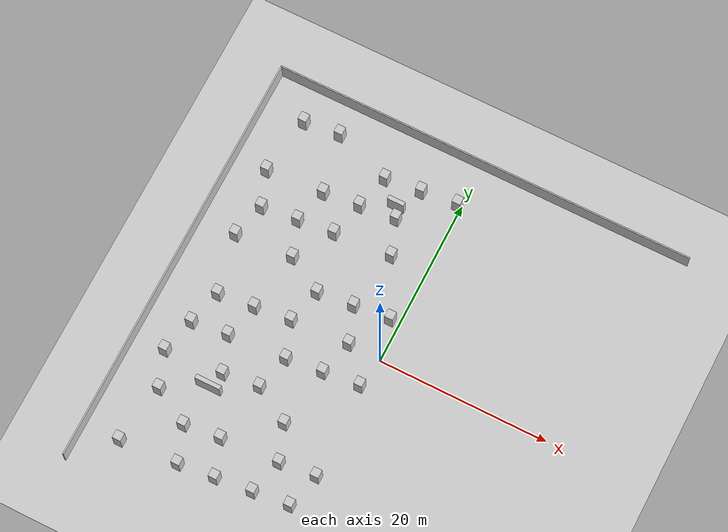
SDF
<sdf version="1.9">
 <world name="default">
  <model name="ground_plane">
   <static>true</static>
   <link name="link">
    <collision name="collision">
     <geometry><plane><normal>0 0 1</normal><size>50 50</size></plane></geometry>
    </collision>
    <visual name="visual">
     <cast_shadows>false</cast_shadows>
     <geometry><plane><normal>0 0 1</normal><size>50 50</size></plane></geometry>
     <material>
      <ambient>0.8 0.8 0.8 1</ambient>
      <diffuse>0.8 0.8 0.8 1</diffuse>
      <specular>0.0 0.0 0.0 1</specular>
      <pbr>
       <metal>
        <albedo_map>file://materials/textures/plank_walls.jpg</albedo_map>
        <roughness>1.0</roughness>
        <metalness>0</metalness>
       </metal>
      </pbr>
     </material>
    </visual>
   </link>
  </model>
  <model name="wall_north">
   <static>true</static>
   <pose>0 25 0 0 0 3.14159</pose>
   <link name="link">
    <collision name="collision">
     <pose>0 0 1.25 0 0 0</pose>
     <geometry><box><size>50.15 0.15 2.5</size></box></geometry>
    </collision>
    <visual name="visual">
     <pose>0 0 1.25 0 0 0</pose>
     <cast_shadows>false</cast_shadows>
     <geometry><box><size>50.15 0.15 2.5</size></box></geometry>
     <material>
      <ambient>0.8 0.8 0.8 1</ambient>
      <diffuse>0.8 0.8 0.8 1</diffuse>
      <specular>0.0 0.0 0.0 1</specular>
      <pbr>
       <metal>
        <albedo_map>file://materials/textures/plaster_bricks.jpg</albedo_map>
        <roughness>1.0</roughness>
        <metalness>0</metalness>
       </metal>
      </pbr>
     </material>
    </visual>
   </link>
  </model>
  <model name="wall_west">
   <static>true</static>
   <pose>-25 0 0 0 0 -1.5708</pose>
   <link name="link">
    <collision name="collision">
     <pose>0 0 1.25 0 0 0</pose>
     <geometry><box><size>50.15 0.15 2.5</size></box></geometry>
    </collision>
    <visual name="visual">
     <pose>0 0 1.25 0 0 0</pose>
     <cast_shadows>false</cast_shadows>
     <geometry><box><size>50.15 0.15 2.5</size></box></geometry>
     <material>
      <ambient>0.8 0.8 0.8 1</ambient>
      <diffuse>0.8 0.8 0.8 1</diffuse>
      <specular>0.0 0.0 0.0 1</specular>
      <pbr>
       <metal>
        <albedo_map>file://materials/textures/plaster_bricks.jpg</albedo_map>
        <roughness>1.0</roughness>
        <metalness>0</metalness>
       </metal>
      </pbr>
     </material>
    </visual>
   </link>
  </model>
  <model name="wall_inner_11">
   <static>true</static>
   <pose>-6.413 16.548 0 0 0 0.0</pose>
   <link name="link">
    <collision name="collision">
     <pose>0 0 1.25 0 0 0</pose>
     <geometry><box><size>2.0 0.5 2.5</size></box></geometry>
    </collision>
    <visual name="visual">
     <pose>0 0 1.25 0 0 0</pose>
     <cast_shadows>false</cast_shadows>
     <geometry><box><size>2.0 0.5 2.5</size></box></geometry>
     <material>
      <ambient>0.8 0.8 0.8 1</ambient>
      <diffuse>0.8 0.8 0.8 1</diffuse>
      <specular>0.0 0.0 0.0 1</specular>
      <pbr>
       <metal>
        <albedo_map>file://materials/textures/plaster_bricks.jpg</albedo_map>
        <roughness>1.0</roughness>
        <metalness>0</metalness>
       </metal>
      </pbr>
     </material>
    </visual>
   </link>
  </model>
  <model name="wall_inner_14">
   <static>true</static>
   <pose>-15.050 -11.050 0 0 0 0.0</pose>
   <link name="link">
    <collision name="collision">
     <pose>0 0 1.25 0 0 0</pose>
     <geometry><box><size>3.0 0.5 2.5</size></box></geometry>
    </collision>
    <visual name="visual">
     <pose>0 0 1.25 0 0 0</pose>
     <cast_shadows>false</cast_shadows>
     <geometry><box><size>3.0 0.5 2.5</size></box></geometry>
     <material>
      <ambient>0.8 0.8 0.8 1</ambient>
      <diffuse>0.8 0.8 0.8 1</diffuse>
      <specular>0.0 0.0 0.0 1</specular>
      <pbr>
       <metal>
        <albedo_map>file://materials/textures/plaster_bricks.jpg</albedo_map>
        <roughness>1.0</roughness>
        <metalness>0</metalness>
       </metal>
      </pbr>
     </material>
    </visual>
   </link>
  </model>
  <model name="unit_box">
   <static>true</static>
   <pose>-20.75 -20.6 1.25 0 0 0</pose>
   <link name="link">
    <collision name="collision"><geometry><box><size>1 1 2.5</size></box></geometry></collision>
    <visual name="visual">
     <cast_shadows>false</cast_shadows>
     <geometry><box><size>1 1 2.5</size></box></geometry>
     <material>
      <ambient>0.8 0.8 0.8 1</ambient>
      <diffuse>0.8 0.8 0.8 1</diffuse>
      <specular>0.0 0.0 0.0 1</specular>
      <pbr>
       <metal>
        <albedo_map>file://materials/media/wall1.png</albedo_map>
        <roughness>1.0</roughness>
        <metalness>0</metalness>
       </metal>
      </pbr>
     </material>
    </visual>
   </link>
  </model>
  <model name="unit_box_1">
   <static>true</static>
   <pose>-19.7 -13.65 1.25 0 0 0</pose>
   <link name="link">
    <collision name="collision"><geometry><box><size>1 1 2.5</size></box></geometry></collision>
    <visual name="visual">
     <cast_shadows>false</cast_shadows>
     <geometry><box><size>1 1 2.5</size></box></geometry>
     <material>
      <ambient>0.8 0.8 0.8 1</ambient>
      <diffuse>0.8 0.8 0.8 1</diffuse>
      <specular>0.0 0.0 0.0 1</specular>
      <pbr>
       <metal>
        <albedo_map>file://materials/media/wall2.png</albedo_map>
        <roughness>1.0</roughness>
        <metalness>0</metalness>
       </metal>
      </pbr>
     </material>
    </visual>
   </link>
  </model>
  <model name="unit_box_2">
   <static>true</static>
   <pose>-21.2 -9.55 1.25 0 0 0</pose>
   <link name="link">
    <collision name="collision"><geometry><box><size>1 1 2.5</size></box></geometry></collision>
    <visual name="visual">
     <cast_shadows>false</cast_shadows>
     <geometry><box><size>1 1 2.5</size></box></geometry>
     <material>
      <ambient>0.8 0.8 0.8 1</ambient>
      <diffuse>0.8 0.8 0.8 1</diffuse>
      <specular>0.0 0.0 0.0 1</specular>
      <pbr>
       <metal>
        <albedo_map>file://materials/media/wall3.png</albedo_map>
        <roughness>1.0</roughness>
        <metalness>0</metalness>
       </metal>
      </pbr>
     </material>
    </visual>
   </link>
  </model>
  <model name="unit_box_3">
   <static>true</static>
   <pose>-20.15 -5.45 1.25 0 0 0</pose>
   <link name="link">
    <collision name="collision"><geometry><box><size>1 1 2.5</size></box></geometry></collision>
    <visual name="visual">
     <cast_shadows>false</cast_shadows>
     <geometry><box><size>1 1 2.5</size></box></geometry>
     <material>
      <ambient>0.8 0.8 0.8 1</ambient>
      <diffuse>0.8 0.8 0.8 1</diffuse>
      <specular>0.0 0.0 0.0 1</specular>
      <pbr>
       <metal>
        <albedo_map>file://materials/media/wall4.png</albedo_map>
        <roughness>1.0</roughness>
        <metalness>0</metalness>
       </metal>
      </pbr>
     </material>
    </visual>
   </link>
  </model>
  <model name="unit_box_4">
   <static>true</static>
   <pose>-19.1 -1.35 1.25 0 0 0</pose>
   <link name="link">
    <collision name="collision"><geometry><box><size>1 1 2.5</size></box></geometry></collision>
    <visual name="visual">
     <cast_shadows>false</cast_shadows>
     <geometry><box><size>1 1 2.5</size></box></geometry>
     <material>
      <ambient>0.8 0.8 0.8 1</ambient>
      <diffuse>0.8 0.8 0.8 1</diffuse>
      <specular>0.0 0.0 0.0 1</specular>
      <pbr>
       <metal>
        <albedo_map>file://materials/media/wall5.png</albedo_map>
        <roughness>1.0</roughness>
        <metalness>0</metalness>
       </metal>
      </pbr>
     </material>
    </visual>
   </link>
  </model>
  <model name="unit_box_5">
   <static>true</static>
   <pose>-20.6 5.6 1.25 0 0 0</pose>
   <link name="link">
    <collision name="collision"><geometry><box><size>1 1 2.5</size></box></geometry></collision>
    <visual name="visual">
     <cast_shadows>false</cast_shadows>
     <geometry><box><size>1 1 2.5</size></box></geometry>
     <material>
      <ambient>0.8 0.8 0.8 1</ambient>
      <diffuse>0.8 0.8 0.8 1</diffuse>
      <specular>0.0 0.0 0.0 1</specular>
      <pbr>
       <metal>
        <albedo_map>file://materials/media/wall6.png</albedo_map>
        <roughness>1.0</roughness>
        <metalness>0</metalness>
       </metal>
      </pbr>
     </material>
    </visual>
   </link>
  </model>
  <model name="unit_box_6">
   <static>true</static>
   <pose>-19.55 9.7 1.25 0 0 0</pose>
   <link name="link">
    <collision name="collision"><geometry><box><size>1 1 2.5</size></box></geometry></collision>
    <visual name="visual">
     <cast_shadows>false</cast_shadows>
     <geometry><box><size>1 1 2.5</size></box></geometry>
     <material>
      <ambient>0.8 0.8 0.8 1</ambient>
      <diffuse>0.8 0.8 0.8 1</diffuse>
      <specular>0.0 0.0 0.0 1</specular>
      <pbr>
       <metal>
        <albedo_map>file://materials/media/wall7.png</albedo_map>
        <roughness>1.0</roughness>
        <metalness>0</metalness>
       </metal>
      </pbr>
     </material>
    </visual>
   </link>
  </model>
  <model name="unit_box_7">
   <static>true</static>
   <pose>-21.05 13.8 1.25 0 0 0</pose>
   <link name="link">
    <collision name="collision"><geometry><box><size>1 1 2.5</size></box></geometry></collision>
    <visual name="visual">
     <cast_shadows>false</cast_shadows>
     <geometry><box><size>1 1 2.5</size></box></geometry>
     <material>
      <ambient>0.8 0.8 0.8 1</ambient>
      <diffuse>0.8 0.8 0.8 1</diffuse>
      <specular>0.0 0.0 0.0 1</specular>
      <pbr>
       <metal>
        <albedo_map>file://materials/media/wall8.png</albedo_map>
        <roughness>1.0</roughness>
        <metalness>0</metalness>
       </metal>
      </pbr>
     </material>
    </visual>
   </link>
  </model>
  <model name="unit_box_8">
   <static>true</static>
   <pose>-20.0 20.75 1.25 0 0 0</pose>
   <link name="link">
    <collision name="collision"><geometry><box><size>1 1 2.5</size></box></geometry></collision>
    <visual name="visual">
     <cast_shadows>false</cast_shadows>
     <geometry><box><size>1 1 2.5</size></box></geometry>
     <material>
      <ambient>0.8 0.8 0.8 1</ambient>
      <diffuse>0.8 0.8 0.8 1</diffuse>
      <specular>0.0 0.0 0.0 1</specular>
      <pbr>
       <metal>
        <albedo_map>file://materials/media/wall9.png</albedo_map>
        <roughness>1.0</roughness>
        <metalness>0</metalness>
       </metal>
      </pbr>
     </material>
    </visual>
   </link>
  </model>
  <model name="unit_box_9">
   <static>true</static>
   <pose>-13.95 -20.15 1.25 0 0 0</pose>
   <link name="link">
    <collision name="collision"><geometry><box><size>1 1 2.5</size></box></geometry></collision>
    <visual name="visual">
     <cast_shadows>false</cast_shadows>
     <geometry><box><size>1 1 2.5</size></box></geometry>
     <material>
      <ambient>0.8 0.8 0.8 1</ambient>
      <diffuse>0.8 0.8 0.8 1</diffuse>
      <specular>0.0 0.0 0.0 1</specular>
      <pbr>
       <metal>
        <albedo_map>file://materials/media/wall10.png</albedo_map>
        <roughness>1.0</roughness>
        <metalness>0</metalness>
       </metal>
      </pbr>
     </material>
    </visual>
   </link>
  </model>
  <model name="unit_box_10">
   <static>true</static>
   <pose>-15.45 -16.05 1.25 0 0 0</pose>
   <link name="link">
    <collision name="collision"><geometry><box><size>1 1 2.5</size></box></geometry></collision>
    <visual name="visual">
     <cast_shadows>false</cast_shadows>
     <geometry><box><size>1 1 2.5</size></box></geometry>
     <material>
      <ambient>0.8 0.8 0.8 1</ambient>
      <diffuse>0.8 0.8 0.8 1</diffuse>
      <specular>0.0 0.0 0.0 1</specular>
      <pbr>
       <metal>
        <albedo_map>file://materials/media/wall11.png</albedo_map>
        <roughness>1.0</roughness>
        <metalness>0</metalness>
       </metal>
      </pbr>
     </material>
    </visual>
   </link>
  </model>
  <model name="unit_box_11">
   <static>true</static>
   <pose>-14.4 -9.1 1.25 0 0 0</pose>
   <link name="link">
    <collision name="collision"><geometry><box><size>1 1 2.5</size></box></geometry></collision>
    <visual name="visual">
     <cast_shadows>false</cast_shadows>
     <geometry><box><size>1 1 2.5</size></box></geometry>
     <material>
      <ambient>0.8 0.8 0.8 1</ambient>
      <diffuse>0.8 0.8 0.8 1</diffuse>
      <specular>0.0 0.0 0.0 1</specular>
      <pbr>
       <metal>
        <albedo_map>file://materials/media/wall12.png</albedo_map>
        <roughness>1.0</roughness>
        <metalness>0</metalness>
       </metal>
      </pbr>
     </material>
    </visual>
   </link>
  </model>
  <model name="unit_box_12">
   <static>true</static>
   <pose>-15.9 -5.0 1.25 0 0 0</pose>
   <link name="link">
    <collision name="collision"><geometry><box><size>1 1 2.5</size></box></geometry></collision>
    <visual name="visual">
     <cast_shadows>false</cast_shadows>
     <geometry><box><size>1 1 2.5</size></box></geometry>
     <material>
      <ambient>0.8 0.8 0.8 1</ambient>
      <diffuse>0.8 0.8 0.8 1</diffuse>
      <specular>0.0 0.0 0.0 1</specular>
      <pbr>
       <metal>
        <albedo_map>file://materials/media/wall13.png</albedo_map>
        <roughness>1.0</roughness>
        <metalness>0</metalness>
       </metal>
      </pbr>
     </material>
    </visual>
   </link>
  </model>
  <model name="unit_box_13">
   <static>true</static>
   <pose>-14.85 -0.9 1.25 0 0 0</pose>
   <link name="link">
    <collision name="collision"><geometry><box><size>1 1 2.5</size></box></geometry></collision>
    <visual name="visual">
     <cast_shadows>false</cast_shadows>
     <geometry><box><size>1 1 2.5</size></box></geometry>
     <material>
      <ambient>0.8 0.8 0.8 1</ambient>
      <diffuse>0.8 0.8 0.8 1</diffuse>
      <specular>0.0 0.0 0.0 1</specular>
      <pbr>
       <metal>
        <albedo_map>file://materials/media/wall14.png</albedo_map>
        <roughness>1.0</roughness>
        <metalness>0</metalness>
       </metal>
      </pbr>
     </material>
    </visual>
   </link>
  </model>
  <model name="unit_box_14">
   <static>true</static>
   <pose>-13.8 6.05 1.25 0 0 0</pose>
   <link name="link">
    <collision name="collision"><geometry><box><size>1 1 2.5</size></box></geometry></collision>
    <visual name="visual">
     <cast_shadows>false</cast_shadows>
     <geometry><box><size>1 1 2.5</size></box></geometry>
     <material>
      <ambient>0.8 0.8 0.8 1</ambient>
      <diffuse>0.8 0.8 0.8 1</diffuse>
      <specular>0.0 0.0 0.0 1</specular>
      <pbr>
       <metal>
        <albedo_map>file://materials/media/wall15.png</albedo_map>
        <roughness>1.0</roughness>
        <metalness>0</metalness>
       </metal>
      </pbr>
     </material>
    </visual>
   </link>
  </model>
  <model name="unit_box_15">
   <static>true</static>
   <pose>-15.3 10.15 1.25 0 0 0</pose>
   <link name="link">
    <collision name="collision"><geometry><box><size>1 1 2.5</size></box></geometry></collision>
    <visual name="visual">
     <cast_shadows>false</cast_shadows>
     <geometry><box><size>1 1 2.5</size></box></geometry>
     <material>
      <ambient>0.8 0.8 0.8 1</ambient>
      <diffuse>0.8 0.8 0.8 1</diffuse>
      <specular>0.0 0.0 0.0 1</specular>
      <pbr>
       <metal>
        <albedo_map>file://materials/media/wall16.png</albedo_map>
        <roughness>1.0</roughness>
        <metalness>0</metalness>
       </metal>
      </pbr>
     </material>
    </visual>
   </link>
  </model>
  <model name="unit_box_16">
   <static>true</static>
   <pose>-14.25 14.25 1.25 0 0 0</pose>
   <link name="link">
    <collision name="collision"><geometry><box><size>1 1 2.5</size></box></geometry></collision>
    <visual name="visual">
     <cast_shadows>false</cast_shadows>
     <geometry><box><size>1 1 2.5</size></box></geometry>
     <material>
      <ambient>0.8 0.8 0.8 1</ambient>
      <diffuse>0.8 0.8 0.8 1</diffuse>
      <specular>0.0 0.0 0.0 1</specular>
      <pbr>
       <metal>
        <albedo_map>file://materials/media/wall17.png</albedo_map>
        <roughness>1.0</roughness>
        <metalness>0</metalness>
       </metal>
      </pbr>
     </material>
    </visual>
   </link>
  </model>
  <model name="unit_box_17">
   <static>true</static>
   <pose>-15.75 21.2 1.25 0 0 0</pose>
   <link name="link">
    <collision name="collision"><geometry><box><size>1 1 2.5</size></box></geometry></collision>
    <visual name="visual">
     <cast_shadows>false</cast_shadows>
     <geometry><box><size>1 1 2.5</size></box></geometry>
     <material>
      <ambient>0.8 0.8 0.8 1</ambient>
      <diffuse>0.8 0.8 0.8 1</diffuse>
      <specular>0.0 0.0 0.0 1</specular>
      <pbr>
       <metal>
        <albedo_map>file://materials/media/wall18.png</albedo_map>
        <roughness>1.0</roughness>
        <metalness>0</metalness>
       </metal>
      </pbr>
     </material>
    </visual>
   </link>
  </model>
  <model name="unit_box_18">
   <static>true</static>
   <pose>-9.7 -19.7 1.25 0 0 0</pose>
   <link name="link">
    <collision name="collision"><geometry><box><size>1 1 2.5</size></box></geometry></collision>
    <visual name="visual">
     <cast_shadows>false</cast_shadows>
     <geometry><box><size>1 1 2.5</size></box></geometry>
     <material>
      <ambient>0.8 0.8 0.8 1</ambient>
      <diffuse>0.8 0.8 0.8 1</diffuse>
      <specular>0.0 0.0 0.0 1</specular>
      <pbr>
       <metal>
        <albedo_map>file://materials/media/wall19.png</albedo_map>
        <roughness>1.0</roughness>
        <metalness>0</metalness>
       </metal>
      </pbr>
     </material>
    </visual>
   </link>
  </model>
  <model name="unit_box_19">
   <static>true</static>
   <pose>-11.2 -15.6 1.25 0 0 0</pose>
   <link name="link">
    <collision name="collision"><geometry><box><size>1 1 2.5</size></box></geometry></collision>
    <visual name="visual">
     <cast_shadows>false</cast_shadows>
     <geometry><box><size>1 1 2.5</size></box></geometry>
     <material>
      <ambient>0.8 0.8 0.8 1</ambient>
      <diffuse>0.8 0.8 0.8 1</diffuse>
      <specular>0.0 0.0 0.0 1</specular>
      <pbr>
       <metal>
        <albedo_map>file://materials/media/wall20.png</albedo_map>
        <roughness>1.0</roughness>
        <metalness>0</metalness>
       </metal>
      </pbr>
     </material>
    </visual>
   </link>
  </model>
  <model name="unit_box_20">
   <static>true</static>
   <pose>-10.15 -8.65 1.25 0 0 0</pose>
   <link name="link">
    <collision name="collision"><geometry><box><size>1 1 2.5</size></box></geometry></collision>
    <visual name="visual">
     <cast_shadows>false</cast_shadows>
     <geometry><box><size>1 1 2.5</size></box></geometry>
     <material>
      <ambient>0.8 0.8 0.8 1</ambient>
      <diffuse>0.8 0.8 0.8 1</diffuse>
      <specular>0.0 0.0 0.0 1</specular>
      <pbr>
       <metal>
        <albedo_map>file://materials/media/wall21.png</albedo_map>
        <roughness>1.0</roughness>
        <metalness>0</metalness>
       </metal>
      </pbr>
     </material>
    </visual>
   </link>
  </model>
  <model name="unit_box_21">
   <static>true</static>
   <pose>-9.1 -4.55 1.25 0 0 0</pose>
   <link name="link">
    <collision name="collision"><geometry><box><size>1 1 2.5</size></box></geometry></collision>
    <visual name="visual">
     <cast_shadows>false</cast_shadows>
     <geometry><box><size>1 1 2.5</size></box></geometry>
     <material>
      <ambient>0.8 0.8 0.8 1</ambient>
      <diffuse>0.8 0.8 0.8 1</diffuse>
      <specular>0.0 0.0 0.0 1</specular>
      <pbr>
       <metal>
        <albedo_map>file://materials/media/wall22.png</albedo_map>
        <roughness>1.0</roughness>
        <metalness>0</metalness>
       </metal>
      </pbr>
     </material>
    </visual>
   </link>
  </model>
  <model name="unit_box_22">
   <static>true</static>
   <pose>-10.6 -0.45 1.25 0 0 0</pose>
   <link name="link">
    <collision name="collision"><geometry><box><size>1 1 2.5</size></box></geometry></collision>
    <visual name="visual">
     <cast_shadows>false</cast_shadows>
     <geometry><box><size>1 1 2.5</size></box></geometry>
     <material>
      <ambient>0.8 0.8 0.8 1</ambient>
      <diffuse>0.8 0.8 0.8 1</diffuse>
      <specular>0.0 0.0 0.0 1</specular>
      <pbr>
       <metal>
        <albedo_map>file://materials/media/wall23.png</albedo_map>
        <roughness>1.0</roughness>
        <metalness>0</metalness>
       </metal>
      </pbr>
     </material>
    </visual>
   </link>
  </model>
  <model name="unit_box_23">
   <static>true</static>
   <pose>-9.55 3.65 1.25 0 0 0</pose>
   <link name="link">
    <collision name="collision"><geometry><box><size>1 1 2.5</size></box></geometry></collision>
    <visual name="visual">
     <cast_shadows>false</cast_shadows>
     <geometry><box><size>1 1 2.5</size></box></geometry>
     <material>
      <ambient>0.8 0.8 0.8 1</ambient>
      <diffuse>0.8 0.8 0.8 1</diffuse>
      <specular>0.0 0.0 0.0 1</specular>
      <pbr>
       <metal>
        <albedo_map>file://materials/media/wall24.png</albedo_map>
        <roughness>1.0</roughness>
        <metalness>0</metalness>
       </metal>
      </pbr>
     </material>
    </visual>
   </link>
  </model>
  <model name="unit_box_24">
   <static>true</static>
   <pose>-11.05 10.6 1.25 0 0 0</pose>
   <link name="link">
    <collision name="collision"><geometry><box><size>1 1 2.5</size></box></geometry></collision>
    <visual name="visual">
     <cast_shadows>false</cast_shadows>
     <geometry><box><size>1 1 2.5</size></box></geometry>
     <material>
      <ambient>0.8 0.8 0.8 1</ambient>
      <diffuse>0.8 0.8 0.8 1</diffuse>
      <specular>0.0 0.0 0.0 1</specular>
      <pbr>
       <metal>
        <albedo_map>file://materials/media/wall25.png</albedo_map>
        <roughness>1.0</roughness>
        <metalness>0</metalness>
       </metal>
      </pbr>
     </material>
    </visual>
   </link>
  </model>
  <model name="unit_box_25">
   <static>true</static>
   <pose>-10.0 14.7 1.25 0 0 0</pose>
   <link name="link">
    <collision name="collision"><geometry><box><size>1 1 2.5</size></box></geometry></collision>
    <visual name="visual">
     <cast_shadows>false</cast_shadows>
     <geometry><box><size>1 1 2.5</size></box></geometry>
     <material>
      <ambient>0.8 0.8 0.8 1</ambient>
      <diffuse>0.8 0.8 0.8 1</diffuse>
      <specular>0.0 0.0 0.0 1</specular>
      <pbr>
       <metal>
        <albedo_map>file://materials/media/wall26.png</albedo_map>
        <roughness>1.0</roughness>
        <metalness>0</metalness>
       </metal>
      </pbr>
     </material>
    </visual>
   </link>
  </model>
  <model name="unit_box_26">
   <static>true</static>
   <pose>-8.95 18.8 1.25 0 0 0</pose>
   <link name="link">
    <collision name="collision"><geometry><box><size>1 1 2.5</size></box></geometry></collision>
    <visual name="visual">
     <cast_shadows>false</cast_shadows>
     <geometry><box><size>1 1 2.5</size></box></geometry>
     <material>
      <ambient>0.8 0.8 0.8 1</ambient>
      <diffuse>0.8 0.8 0.8 1</diffuse>
      <specular>0.0 0.0 0.0 1</specular>
      <pbr>
       <metal>
        <albedo_map>file://materials/media/wall27.png</albedo_map>
        <roughness>1.0</roughness>
        <metalness>0</metalness>
       </metal>
      </pbr>
     </material>
    </visual>
   </link>
  </model>
  <model name="unit_box_27">
   <static>true</static>
   <pose>-5.45 -19.25 1.25 0 0 0</pose>
   <link name="link">
    <collision name="collision"><geometry><box><size>1 1 2.5</size></box></geometry></collision>
    <visual name="visual">
     <cast_shadows>false</cast_shadows>
     <geometry><box><size>1 1 2.5</size></box></geometry>
     <material>
      <ambient>0.8 0.8 0.8 1</ambient>
      <diffuse>0.8 0.8 0.8 1</diffuse>
      <specular>0.0 0.0 0.0 1</specular>
      <pbr>
       <metal>
        <albedo_map>file://materials/media/wall28.png</albedo_map>
        <roughness>1.0</roughness>
        <metalness>0</metalness>
       </metal>
      </pbr>
     </material>
    </visual>
   </link>
  </model>
  <model name="unit_box_28">
   <static>true</static>
   <pose>-4.4 -15.15 1.25 0 0 0</pose>
   <link name="link">
    <collision name="collision"><geometry><box><size>1 1 2.5</size></box></geometry></collision>
    <visual name="visual">
     <cast_shadows>false</cast_shadows>
     <geometry><box><size>1 1 2.5</size></box></geometry>
     <material>
      <ambient>0.8 0.8 0.8 1</ambient>
      <diffuse>0.8 0.8 0.8 1</diffuse>
      <specular>0.0 0.0 0.0 1</specular>
      <pbr>
       <metal>
        <albedo_map>file://materials/media/wall29.png</albedo_map>
        <roughness>1.0</roughness>
        <metalness>0</metalness>
       </metal>
      </pbr>
     </material>
    </visual>
   </link>
  </model>
  <model name="unit_box_29">
   <static>true</static>
   <pose>-5.9 -11.05 1.25 0 0 0</pose>
   <link name="link">
    <collision name="collision"><geometry><box><size>1 1 2.5</size></box></geometry></collision>
    <visual name="visual">
     <cast_shadows>false</cast_shadows>
     <geometry><box><size>1 1 2.5</size></box></geometry>
     <material>
      <ambient>0.8 0.8 0.8 1</ambient>
      <diffuse>0.8 0.8 0.8 1</diffuse>
      <specular>0.0 0.0 0.0 1</specular>
      <pbr>
       <metal>
        <albedo_map>file://materials/media/wall30.png</albedo_map>
        <roughness>1.0</roughness>
        <metalness>0</metalness>
       </metal>
      </pbr>
     </material>
    </visual>
   </link>
  </model>
  <model name="unit_box_30">
   <static>true</static>
   <pose>-4.85 -4.1 1.25 0 0 0</pose>
   <link name="link">
    <collision name="collision"><geometry><box><size>1 1 2.5</size></box></geometry></collision>
    <visual name="visual">
     <cast_shadows>false</cast_shadows>
     <geometry><box><size>1 1 2.5</size></box></geometry>
     <material>
      <ambient>0.8 0.8 0.8 1</ambient>
      <diffuse>0.8 0.8 0.8 1</diffuse>
      <specular>0.0 0.0 0.0 1</specular>
      <pbr>
       <metal>
        <albedo_map>file://materials/media/wall31.png</albedo_map>
        <roughness>1.0</roughness>
        <metalness>0</metalness>
       </metal>
      </pbr>
     </material>
    </visual>
   </link>
  </model>
  <model name="unit_box_31">
   <static>true</static>
   <pose>-3.8 0.0 1.25 0 0 0</pose>
   <link name="link">
    <collision name="collision"><geometry><box><size>1 1 2.5</size></box></geometry></collision>
    <visual name="visual">
     <cast_shadows>false</cast_shadows>
     <geometry><box><size>1 1 2.5</size></box></geometry>
     <material>
      <ambient>0.8 0.8 0.8 1</ambient>
      <diffuse>0.8 0.8 0.8 1</diffuse>
      <specular>0.0 0.0 0.0 1</specular>
      <pbr>
       <metal>
        <albedo_map>file://materials/media/wall32.png</albedo_map>
        <roughness>1.0</roughness>
        <metalness>0</metalness>
       </metal>
      </pbr>
     </material>
    </visual>
   </link>
  </model>
  <model name="unit_box_32">
   <static>true</static>
   <pose>-5.3 4.1 1.25 0 0 0</pose>
   <link name="link">
    <collision name="collision"><geometry><box><size>1 1 2.5</size></box></geometry></collision>
    <visual name="visual">
     <cast_shadows>false</cast_shadows>
     <geometry><box><size>1 1 2.5</size></box></geometry>
     <material>
      <ambient>0.8 0.8 0.8 1</ambient>
      <diffuse>0.8 0.8 0.8 1</diffuse>
      <specular>0.0 0.0 0.0 1</specular>
      <pbr>
       <metal>
        <albedo_map>file://materials/media/wall33.png</albedo_map>
        <roughness>1.0</roughness>
        <metalness>0</metalness>
       </metal>
      </pbr>
     </material>
    </visual>
   </link>
  </model>
  <model name="unit_box_33">
   <static>true</static>
   <pose>-4.25 11.05 1.25 0 0 0</pose>
   <link name="link">
    <collision name="collision"><geometry><box><size>1 1 2.5</size></box></geometry></collision>
    <visual name="visual">
     <cast_shadows>false</cast_shadows>
     <geometry><box><size>1 1 2.5</size></box></geometry>
     <material>
      <ambient>0.8 0.8 0.8 1</ambient>
      <diffuse>0.8 0.8 0.8 1</diffuse>
      <specular>0.0 0.0 0.0 1</specular>
      <pbr>
       <metal>
        <albedo_map>file://materials/media/wall34.png</albedo_map>
        <roughness>1.0</roughness>
        <metalness>0</metalness>
       </metal>
      </pbr>
     </material>
    </visual>
   </link>
  </model>
  <model name="unit_box_34">
   <static>true</static>
   <pose>-5.75 15.15 1.25 0 0 0</pose>
   <link name="link">
    <collision name="collision"><geometry><box><size>1 1 2.5</size></box></geometry></collision>
    <visual name="visual">
     <cast_shadows>false</cast_shadows>
     <geometry><box><size>1 1 2.5</size></box></geometry>
     <material>
      <ambient>0.8 0.8 0.8 1</ambient>
      <diffuse>0.8 0.8 0.8 1</diffuse>
      <specular>0.0 0.0 0.0 1</specular>
      <pbr>
       <metal>
        <albedo_map>file://materials/media/wall35.png</albedo_map>
        <roughness>1.0</roughness>
        <metalness>0</metalness>
       </metal>
      </pbr>
     </material>
    </visual>
   </link>
  </model>
  <model name="unit_box_35">
   <static>true</static>
   <pose>-4.7 19.25 1.25 0 0 0</pose>
   <link name="link">
    <collision name="collision"><geometry><box><size>1 1 2.5</size></box></geometry></collision>
    <visual name="visual">
     <cast_shadows>false</cast_shadows>
     <geometry><box><size>1 1 2.5</size></box></geometry>
     <material>
      <ambient>0.8 0.8 0.8 1</ambient>
      <diffuse>0.8 0.8 0.8 1</diffuse>
      <specular>0.0 0.0 0.0 1</specular>
      <pbr>
       <metal>
        <albedo_map>file://materials/media/wall36.png</albedo_map>
        <roughness>1.0</roughness>
        <metalness>0</metalness>
       </metal>
      </pbr>
     </material>
    </visual>
   </link>
  </model>
  <model name="unit_box_36">
   <static>true</static>
   <pose>-1.2 -18.8 1.25 0 0 0</pose>
   <link name="link">
    <collision name="collision"><geometry><box><size>1 1 2.5</size></box></geometry></collision>
    <visual name="visual">
     <cast_shadows>false</cast_shadows>
     <geometry><box><size>1 1 2.5</size></box></geometry>
     <material>
      <ambient>0.8 0.8 0.8 1</ambient>
      <diffuse>0.8 0.8 0.8 1</diffuse>
      <specular>0.0 0.0 0.0 1</specular>
      <pbr>
       <metal>
        <albedo_map>file://materials/media/wall1.png</albedo_map>
        <roughness>1.0</roughness>
        <metalness>0</metalness>
       </metal>
      </pbr>
     </material>
    </visual>
   </link>
  </model>
  <model name="unit_box_37">
   <static>true</static>
   <pose>-0.15 -14.7 1.25 0 0 0</pose>
   <link name="link">
    <collision name="collision"><geometry><box><size>1 1 2.5</size></box></geometry></collision>
    <visual name="visual">
     <cast_shadows>false</cast_shadows>
     <geometry><box><size>1 1 2.5</size></box></geometry>
     <material>
      <ambient>0.8 0.8 0.8 1</ambient>
      <diffuse>0.8 0.8 0.8 1</diffuse>
      <specular>0.0 0.0 0.0 1</specular>
      <pbr>
       <metal>
        <albedo_map>file://materials/media/wall2.png</albedo_map>
        <roughness>1.0</roughness>
        <metalness>0</metalness>
       </metal>
      </pbr>
     </material>
    </visual>
   </link>
  </model>
  <model name="unit_box_39">
   <static>true</static>
   <pose>-0.6 -3.65 1.25 0 0 0</pose>
   <link name="link">
    <collision name="collision"><geometry><box><size>1 1 2.5</size></box></geometry></collision>
    <visual name="visual">
     <cast_shadows>false</cast_shadows>
     <geometry><box><size>1 1 2.5</size></box></geometry>
     <material>
      <ambient>0.8 0.8 0.8 1</ambient>
      <diffuse>0.8 0.8 0.8 1</diffuse>
      <specular>0.0 0.0 0.0 1</specular>
      <pbr>
       <metal>
        <albedo_map>file://materials/media/wall4.png</albedo_map>
        <roughness>1.0</roughness>
        <metalness>0</metalness>
       </metal>
      </pbr>
     </material>
    </visual>
   </link>
  </model>
  <model name="unit_box_41">
   <static>true</static>
   <pose>-1.05 4.55 1.25 0 0 0</pose>
   <link name="link">
    <collision name="collision"><geometry><box><size>1 1 2.5</size></box></geometry></collision>
    <visual name="visual">
     <cast_shadows>false</cast_shadows>
     <geometry><box><size>1 1 2.5</size></box></geometry>
     <material>
      <ambient>0.8 0.8 0.8 1</ambient>
      <diffuse>0.8 0.8 0.8 1</diffuse>
      <specular>0.0 0.0 0.0 1</specular>
      <pbr>
       <metal>
        <albedo_map>file://materials/media/wall6.png</albedo_map>
        <roughness>1.0</roughness>
        <metalness>0</metalness>
       </metal>
      </pbr>
     </material>
    </visual>
   </link>
  </model>
  <model name="unit_box_44">
   <static>true</static>
   <pose>-0.45 19.7 1.25 0 0 0</pose>
   <link name="link">
    <collision name="collision"><geometry><box><size>1 1 2.5</size></box></geometry></collision>
    <visual name="visual">
     <cast_shadows>false</cast_shadows>
     <geometry><box><size>1 1 2.5</size></box></geometry>
     <material>
      <ambient>0.8 0.8 0.8 1</ambient>
      <diffuse>0.8 0.8 0.8 1</diffuse>
      <specular>0.0 0.0 0.0 1</specular>
      <pbr>
       <metal>
        <albedo_map>file://materials/media/wall9.png</albedo_map>
        <roughness>1.0</roughness>
        <metalness>0</metalness>
       </metal>
      </pbr>
     </material>
    </visual>
   </link>
  </model>
 </world>
</sdf>
